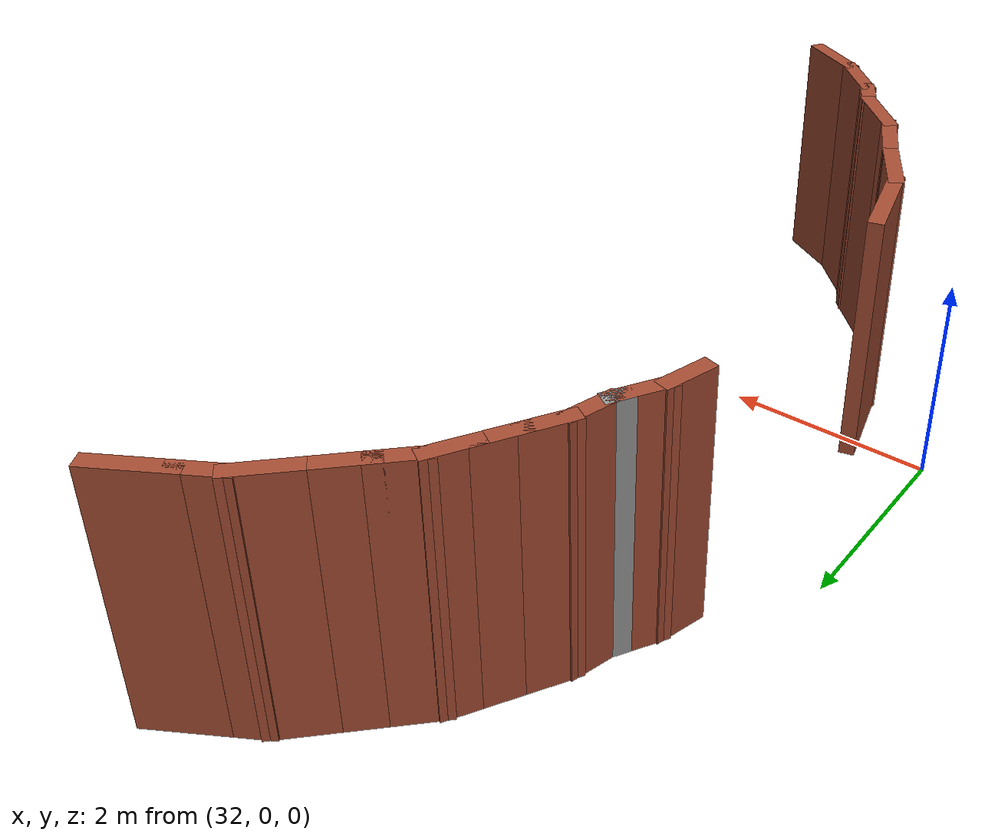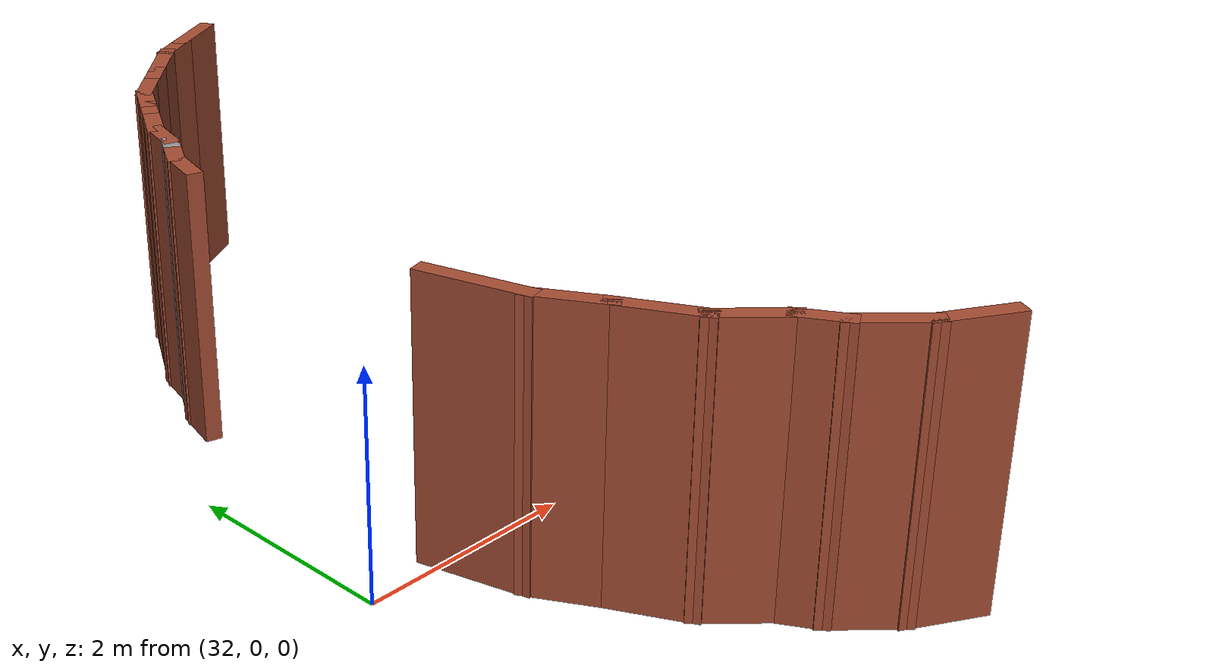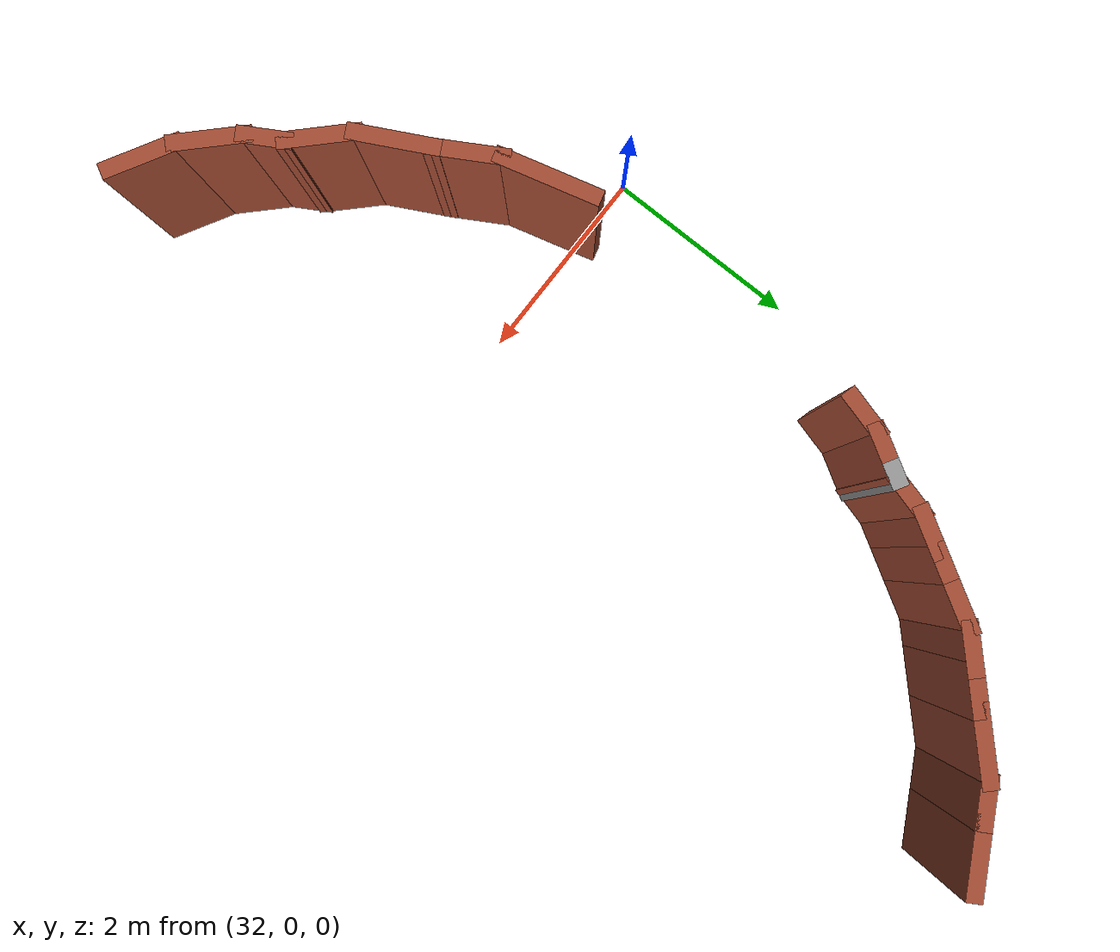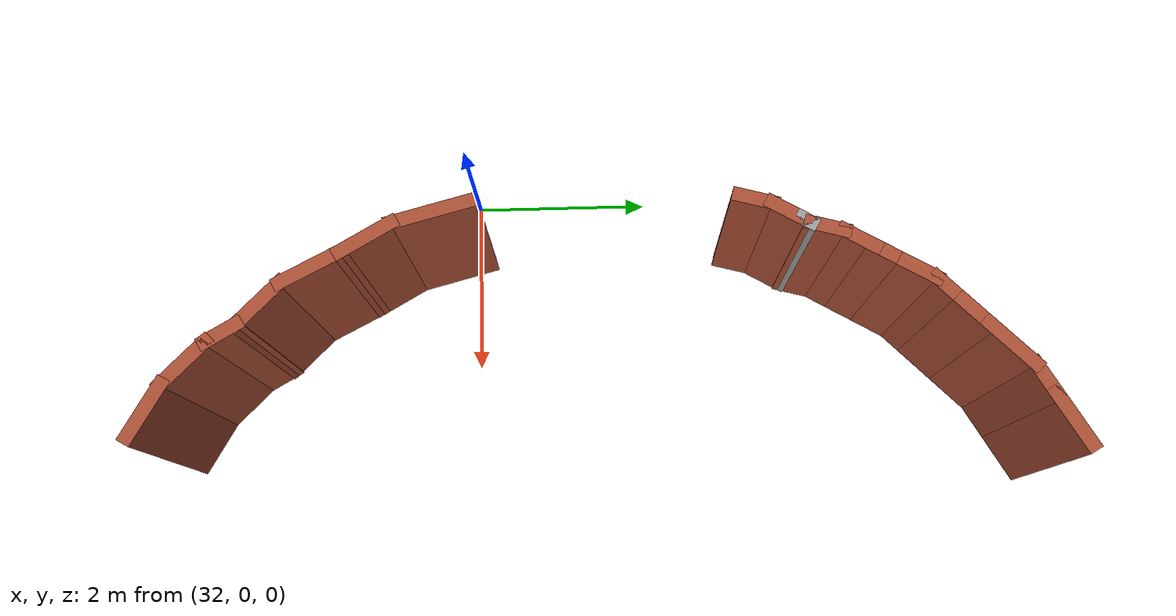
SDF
<sdf version="1.7">
 <model name="Planta1_TD">
  <pose>-6.73335 -7.75071 0 0 -0 0</pose>
  <link name="Wall_302">
   <collision name="Wall_302_Collision">
    <geometry><box><size>0.75 0.15 2.5</size></box></geometry>
    <pose>0 0 1.25 0 -0 0</pose>
   </collision>
   <visual name="Wall_302_Visual">
    <pose>0 0 1.25 0 -0 0</pose>
    <geometry><box><size>0.75 0.15 2.5</size></box></geometry>
    <material>
     <script><uri>file://media/materials/scripts/gazebo.material</uri><name>Gazebo/Bricks</name></script>
     <ambient>1 1 1 1</ambient>
    </material>
    <meta><layer>0</layer></meta>
   </visual>
   <pose>39.8185 6.79608 0 0 -0 2.0944</pose>
  </link>
  <link name="Wall_303">
   <collision name="Wall_303_Collision">
    <geometry><box><size>1 0.15 2.5</size></box></geometry>
    <pose>0 0 1.25 0 -0 0</pose>
   </collision>
   <visual name="Wall_303_Visual">
    <pose>0 0 1.25 0 -0 0</pose>
    <geometry><box><size>1 0.15 2.5</size></box></geometry>
    <material>
     <script><uri>file://media/materials/scripts/gazebo.material</uri><name>Gazebo/Bricks</name></script>
     <ambient>1 1 1 1</ambient>
    </material>
    <meta><layer>0</layer></meta>
   </visual>
   <pose>39.5585 7.4664 0 0 -0 1.8326</pose>
  </link>
  <link name="Wall_310">
   <collision name="Wall_310_Collision">
    <geometry><box><size>0.5 0.15 2.5</size></box></geometry>
    <pose>0 0 1.25 0 -0 0</pose>
   </collision>
   <visual name="Wall_310_Visual">
    <pose>0 0 1.25 0 -0 0</pose>
    <geometry><box><size>0.5 0.15 2.5</size></box></geometry>
    <material>
     <script><uri>file://media/materials/scripts/gazebo.material</uri><name>Gazebo/Bricks</name></script>
     <ambient>1 1 1 1</ambient>
    </material>
    <meta><layer>0</layer></meta>
   </visual>
   <pose>40.5079 12.7706 0 0 -0 -2.35619</pose>
  </link>
  <link name="Wall_311">
   <collision name="Wall_311_Collision">
    <geometry><box><size>0.5 0.15 2.5</size></box></geometry>
    <pose>0 0 1.25 0 -0 0</pose>
   </collision>
   <visual name="Wall_311_Visual">
    <pose>0 0 1.25 0 -0 0</pose>
    <geometry><box><size>0.5 0.15 2.5</size></box></geometry>
    <material>
     <script><uri>file://media/materials/scripts/gazebo.material</uri><name>Gazebo/Bricks</name></script>
     <ambient>1 1 1 1</ambient>
    </material>
    <meta><layer>0</layer></meta>
   </visual>
   <pose>40.2967 12.4953 0 0 -0 -2.0944</pose>
  </link>
  <link name="Wall_312">
   <collision name="Wall_312_Collision">
    <geometry><box><size>0.5 0.15 2.5</size></box></geometry>
    <pose>0 0 1.25 0 -0 0</pose>
   </collision>
   <visual name="Wall_312_Visual">
    <pose>0 0 1.25 0 -0 0</pose>
    <geometry><box><size>0.5 0.15 2.5</size></box></geometry>
    <material>
     <script><uri>file://media/materials/scripts/gazebo.material</uri><name>Gazebo/Bricks</name></script>
     <ambient>1 1 1 1</ambient>
    </material>
    <meta><layer>0</layer></meta>
   </visual>
   <pose>40.1217 12.1922 0 0 -0 -2.0944</pose>
  </link>
  <link name="Wall_313">
   <collision name="Wall_313_Collision">
    <geometry><box><size>0.5 0.15 2.5</size></box></geometry>
    <pose>0 0 1.25 0 -0 0</pose>
   </collision>
   <visual name="Wall_313_Visual">
    <pose>0 0 1.25 0 -0 0</pose>
    <geometry><box><size>0.5 0.15 2.5</size></box></geometry>
    <material>
     <script><uri>file://media/materials/scripts/gazebo.material</uri><name>Gazebo/Bricks</name></script>
     <ambient>1 1 1 1</ambient>
    </material>
    <meta><layer>0</layer></meta>
   </visual>
   <pose>39.9467 11.8891 0 0 -0 -2.0944</pose>
  </link>
  <link name="Wall_314">
   <collision name="Wall_314_Collision">
    <geometry><box><size>0.5 0.15 2.5</size></box></geometry>
    <pose>0 0 1.25 0 -0 0</pose>
   </collision>
   <visual name="Wall_314_Visual">
    <pose>0 0 1.25 0 -0 0</pose>
    <geometry><box><size>0.5 0.15 2.5</size></box></geometry>
    <material>
     <script><uri>file://media/materials/scripts/gazebo.material</uri><name>Gazebo/Bricks</name></script>
     <ambient>1 1 1 1</ambient>
    </material>
    <meta><layer>0</layer></meta>
   </visual>
   <pose>39.8139 11.5685 0 0 -0 -1.8326</pose>
  </link>
  <link name="Wall_315">
   <collision name="Wall_315_Collision">
    <geometry><box><size>0.25 0.15 2.5</size></box></geometry>
    <pose>0 0 1.25 0 -0 0</pose>
   </collision>
   <visual name="Wall_315_Visual">
    <pose>0 0 1.25 0 -0 0</pose>
    <geometry><box><size>0.25 0.15 2.5</size></box></geometry>
    <material>
     <script><uri>file://media/materials/scripts/gazebo.material</uri><name>Gazebo/Grey</name></script>
     <ambient>1 1 1 1</ambient>
    </material>
    <meta><layer>0</layer></meta>
   </visual>
   <pose>39.7436 11.3562 0 0 -0 -2.0944</pose>
  </link>
  <link name="Wall_316">
   <collision name="Wall_316_Collision">
    <geometry><box><size>0.5 0.15 2.5</size></box></geometry>
    <pose>0 0 1.25 0 -0 0</pose>
   </collision>
   <visual name="Wall_316_Visual">
    <pose>0 0 1.25 0 -0 0</pose>
    <geometry><box><size>0.5 0.15 2.5</size></box></geometry>
    <material>
     <script><uri>file://media/materials/scripts/gazebo.material</uri><name>Gazebo/Bricks</name></script>
     <ambient>1 1 1 1</ambient>
    </material>
    <meta><layer>0</layer></meta>
   </visual>
   <pose>39.6311 11.1613 0 0 -0 -2.0944</pose>
  </link>
  <link name="Wall_317">
   <collision name="Wall_317_Collision">
    <geometry><box><size>0.5 0.15 2.5</size></box></geometry>
    <pose>0 0 1.25 0 -0 0</pose>
   </collision>
   <visual name="Wall_317_Visual">
    <pose>0 0 1.25 0 -0 0</pose>
    <geometry><box><size>0.5 0.15 2.5</size></box></geometry>
    <material>
     <script><uri>file://media/materials/scripts/gazebo.material</uri><name>Gazebo/Bricks</name></script>
     <ambient>1 1 1 1</ambient>
    </material>
    <meta><layer>0</layer></meta>
   </visual>
   <pose>39.4983 10.8407 0 0 -0 -1.8326</pose>
  </link>
  <link name="Wall_320">
   <collision name="Wall_320_Collision">
    <geometry><box><size>0.5 0.15 2.5</size></box></geometry>
    <pose>0 0 1.25 0 -0 0</pose>
   </collision>
   <visual name="Wall_320_Visual">
    <pose>0 0 1.25 0 -0 0</pose>
    <geometry><box><size>0.5 0.15 2.5</size></box></geometry>
    <material>
     <script><uri>file://media/materials/scripts/gazebo.material</uri><name>Gazebo/Bricks</name></script>
     <ambient>1 1 1 1</ambient>
    </material>
    <meta><layer>0</layer></meta>
   </visual>
   <pose>40.7554 13.0181 0 0 -0 0.785398</pose>
  </link>
  <link name="Wall_321">
   <collision name="Wall_321_Collision">
    <geometry><box><size>0.75 0.15 2.5</size></box></geometry>
    <pose>0 0 1.25 0 -0 0</pose>
   </collision>
   <visual name="Wall_321_Visual">
    <pose>0 0 1.25 0 -0 0</pose>
    <geometry><box><size>0.75 0.15 2.5</size></box></geometry>
    <material>
     <script><uri>file://media/materials/scripts/gazebo.material</uri><name>Gazebo/Bricks</name></script>
     <ambient>1 1 1 1</ambient>
    </material>
    <meta><layer>0</layer></meta>
   </visual>
   <pose>41.0913 13.354 0 0 -0 0.785398</pose>
  </link>
  <link name="Wall_322">
   <collision name="Wall_322_Collision">
    <geometry><box><size>0.5 0.15 2.5</size></box></geometry>
    <pose>0 0 1.25 0 -0 0</pose>
   </collision>
   <visual name="Wall_322_Visual">
    <pose>0 0 1.25 0 -0 0</pose>
    <geometry><box><size>0.5 0.15 2.5</size></box></geometry>
    <material>
     <script><uri>file://media/materials/scripts/gazebo.material</uri><name>Gazebo/Bricks</name></script>
     <ambient>1 1 1 1</ambient>
    </material>
    <meta><layer>0</layer></meta>
   </visual>
   <pose>41.455 13.6536 0 0 -0 0.523599</pose>
  </link>
  <link name="Wall_323">
   <collision name="Wall_323_Collision">
    <geometry><box><size>0.75 0.15 2.5</size></box></geometry>
    <pose>0 0 1.25 0 -0 0</pose>
   </collision>
   <visual name="Wall_323_Visual">
    <pose>0 0 1.25 0 -0 0</pose>
    <geometry><box><size>0.75 0.15 2.5</size></box></geometry>
    <material>
     <script><uri>file://media/materials/scripts/gazebo.material</uri><name>Gazebo/Bricks</name></script>
     <ambient>1 1 1 1</ambient>
    </material>
    <meta><layer>0</layer></meta>
   </visual>
   <pose>41.8663 13.8911 0 0 -0 0.523599</pose>
  </link>
  <link name="Wall_370">
   <collision name="Wall_370_Collision">
    <geometry><box><size>0.75 0.15 2.5</size></box></geometry>
    <pose>0 0 1.25 0 -0 0</pose>
   </collision>
   <visual name="Wall_370_Visual">
    <pose>0 0 1.25 0 -0 0</pose>
    <geometry><box><size>0.75 0.15 2.5</size></box></geometry>
    <material>
     <script><uri>file://media/materials/scripts/gazebo.material</uri><name>Gazebo/Bricks</name></script>
     <ambient>1 1 1 1</ambient>
    </material>
    <meta><layer>0</layer></meta>
   </visual>
   <pose>41.5665 4.62883 0 0 -0 2.61799</pose>
  </link>
  <link name="Wall_371">
   <collision name="Wall_371_Collision">
    <geometry><box><size>0.75 0.15 2.5</size></box></geometry>
    <pose>0 0 1.25 0 -0 0</pose>
   </collision>
   <visual name="Wall_371_Visual">
    <pose>0 0 1.25 0 -0 0</pose>
    <geometry><box><size>0.75 0.15 2.5</size></box></geometry>
    <material>
     <script><uri>file://media/materials/scripts/gazebo.material</uri><name>Gazebo/Bricks</name></script>
     <ambient>1 1 1 1</ambient>
    </material>
    <meta><layer>0</layer></meta>
   </visual>
   <pose>41.0945 4.99097 0 0 -0 2.35619</pose>
  </link>
  <link name="Wall_372">
   <collision name="Wall_372_Collision">
    <geometry><box><size>0.5 0.15 2.5</size></box></geometry>
    <pose>0 0 1.25 0 -0 0</pose>
   </collision>
   <visual name="Wall_372_Visual">
    <pose>0 0 1.25 0 -0 0</pose>
    <geometry><box><size>0.5 0.15 2.5</size></box></geometry>
    <material>
     <script><uri>file://media/materials/scripts/gazebo.material</uri><name>Gazebo/Bricks</name></script>
     <ambient>1 1 1 1</ambient>
    </material>
    <meta><layer>0</layer></meta>
   </visual>
   <pose>40.7949 5.35465 0 0 -0 2.0944</pose>
  </link>
  <link name="Wall_373">
   <collision name="Wall_373_Collision">
    <geometry><box><size>0.75 0.15 2.5</size></box></geometry>
    <pose>0 0 1.25 0 -0 0</pose>
   </collision>
   <visual name="Wall_373_Visual">
    <pose>0 0 1.25 0 -0 0</pose>
    <geometry><box><size>0.75 0.15 2.5</size></box></geometry>
    <material>
     <script><uri>file://media/materials/scripts/gazebo.material</uri><name>Gazebo/Bricks</name></script>
     <ambient>1 1 1 1</ambient>
    </material>
    <meta><layer>0</layer></meta>
   </visual>
   <pose>40.4953 5.71834 0 0 -0 2.35619</pose>
  </link>
  <link name="Wall_374">
   <collision name="Wall_374_Collision">
    <geometry><box><size>0.832626 0.15 2.5</size></box></geometry>
    <pose>0 0 1.25 0 -0 0</pose>
   </collision>
   <visual name="Wall_374_Visual">
    <pose>0 0 1.25 0 -0 0</pose>
    <geometry><box><size>0.832626 0.15 2.5</size></box></geometry>
    <material>
     <script><uri>file://media/materials/scripts/gazebo.material</uri><name>Gazebo/Bricks</name></script>
     <ambient>1 1 1 1</ambient>
    </material>
    <meta><layer>0</layer></meta>
   </visual>
   <pose>40.1258 6.23337 0 0 -0 2.0498</pose>
  </link>
  <static>1</static>
 </model>
</sdf>
